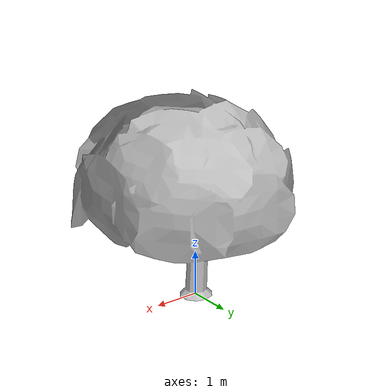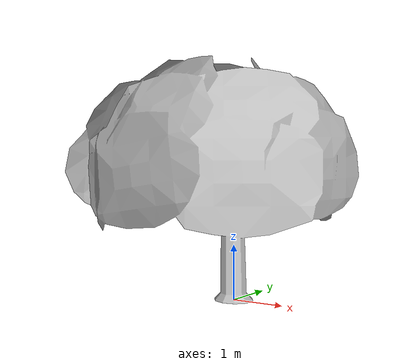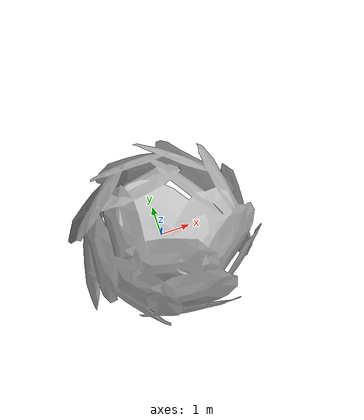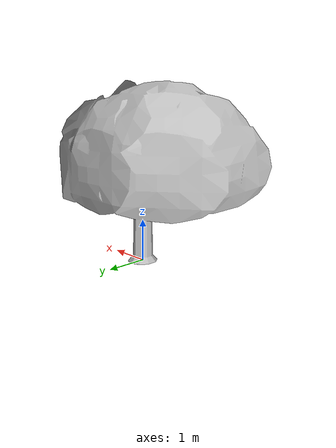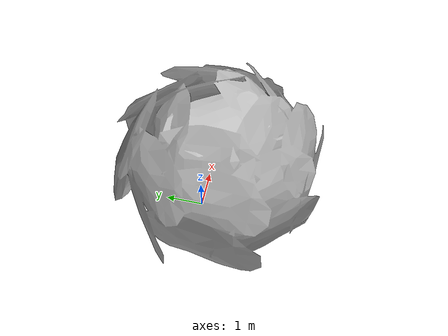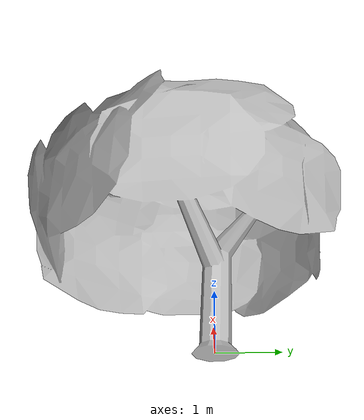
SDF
<?xml version='1.0'?>
<sdf version='1.4'>
  <model name="Tree_1">
    <static>true</static>
    <pose>0 0 0 0 0 0</pose>

    <link name="Tree_1">
      <visual name="Tree_1">
        <geometry>
          <mesh>
            <uri>model://Tree_1/Tree_1.dae</uri>
          </mesh>
        </geometry>s
      </visual>
      <collision name="Tree_1">
        <geometry>
          <mesh>
            <uri>model://Tree_1/Tree_1.dae</uri>
          </mesh>
        </geometry>
      </collision>
    </link>

  </model>
</sdf>
